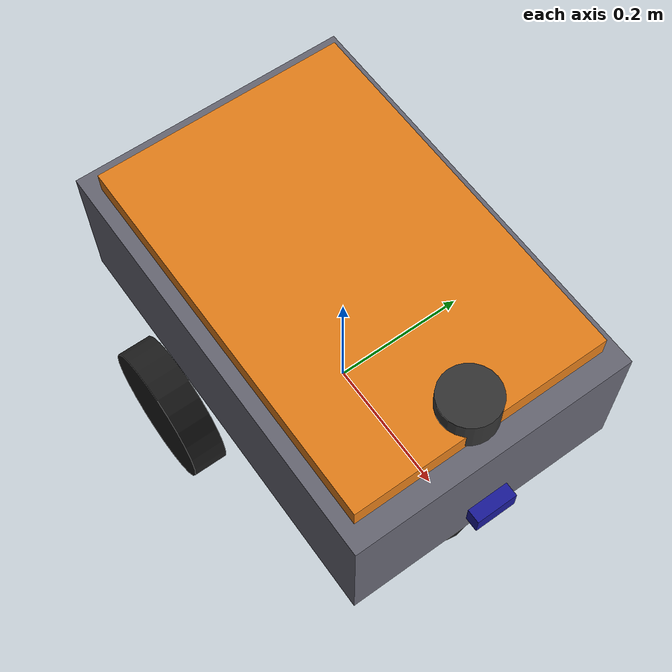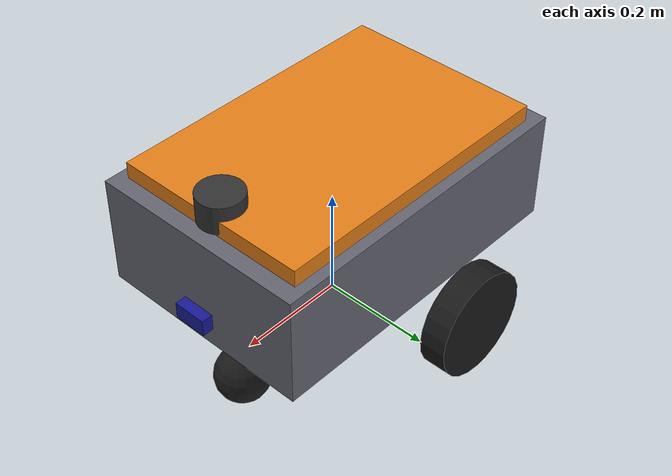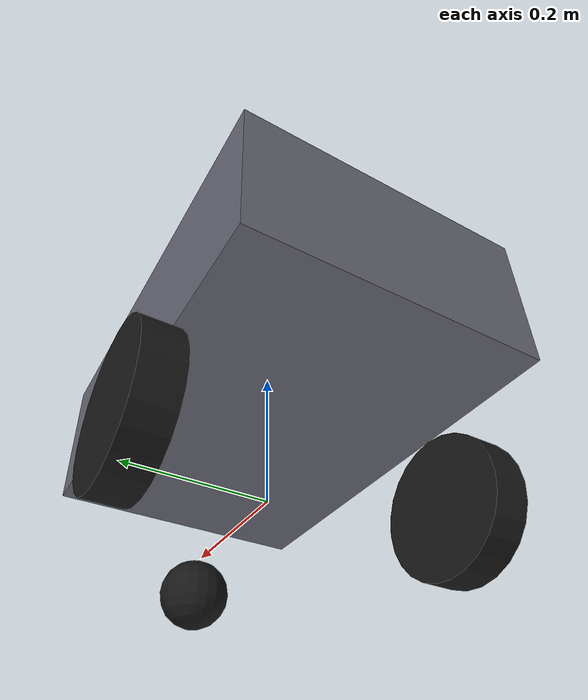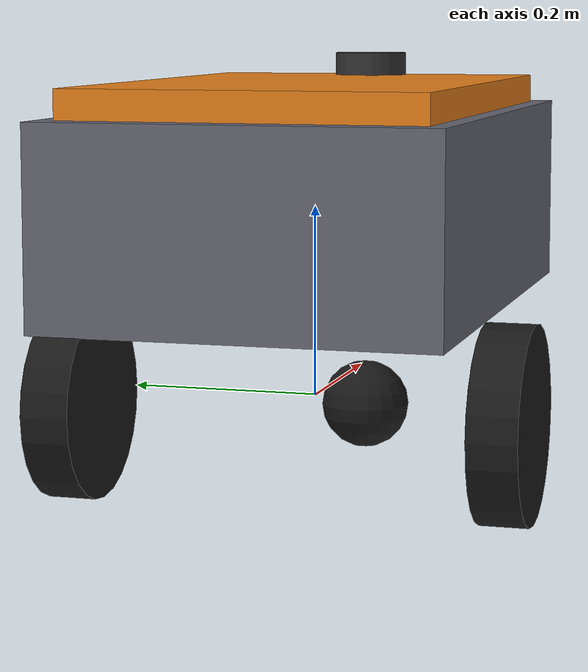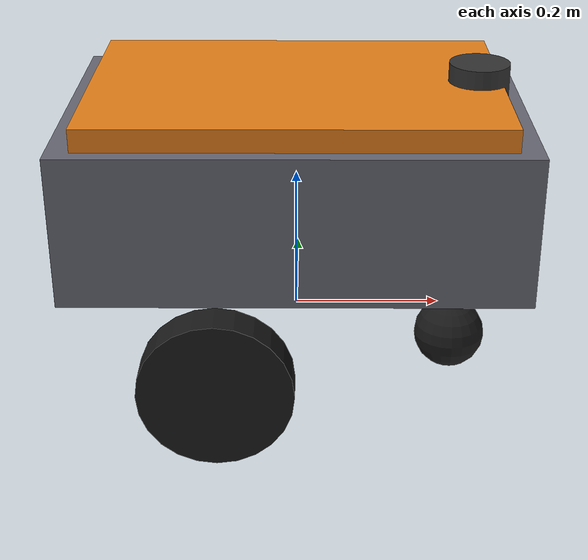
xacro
<?xml version="1.0"?>
<robot xmlns:xacro="http://www.ros.org/wiki/xacro" name="trolleybot">

  <!-- Switch between Gazebo sim hardware and the real DIY base hardware interface -->
  <xacro:arg name="use_sim" default="true"/>

  <xacro:include filename="$(find trolleybot_description)/urdf/base.xacro"/>
  <xacro:include filename="$(find trolleybot_description)/urdf/sensors.xacro"/>
  <xacro:include filename="$(find trolleybot_description)/urdf/lift.xacro"/>
  <xacro:include filename="$(find trolleybot_description)/urdf/ros2_control.xacro"/>

  <xacro:trolleybot_base/>
  <xacro:trolleybot_sensors/>
  <xacro:trolleybot_lift/>
  <xacro:trolleybot_ros2_control use_sim="$(arg use_sim)"/>

</robot>

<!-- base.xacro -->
<robot xmlns:xacro="http://www.ros.org/wiki/xacro">

  <xacro:include filename="$(find trolleybot_description)/urdf/inertials.xacro"/>

  <!-- ===== Geometry parameters ===== -->
  <xacro:property name="chassis_length" value="0.60"/>
  <xacro:property name="chassis_width"  value="0.40"/>
  <xacro:property name="chassis_height" value="0.20"/>
  <xacro:property name="chassis_mass"   value="20.0"/>

  <xacro:property name="wheel_radius"     value="0.10"/>
  <xacro:property name="wheel_width"      value="0.05"/>
  <xacro:property name="wheel_mass"       value="1.0"/>
  <xacro:property name="wheel_separation" value="0.45"/>
  <xacro:property name="wheel_xoff"       value="-0.10"/>

  <xacro:property name="caster_radius" value="0.05"/>
  <xacro:property name="caster_xoff"   value="0.22"/>

  <xacro:macro name="trolleybot_base">

    <!-- base_link is the robot origin on the ground plane between the drive wheels -->
    <link name="base_link"/>

    <!-- Chassis -->
    <joint name="chassis_joint" type="fixed">
      <parent link="base_link"/>
      <child link="chassis_link"/>
      <origin xyz="0 0 ${wheel_radius}"/>
    </joint>

    <link name="chassis_link">
      <visual>
        <origin xyz="0 0 ${chassis_height/2}"/>
        <geometry><box size="${chassis_length} ${chassis_width} ${chassis_height}"/></geometry>
        <material name="grey"><color rgba="0.4 0.4 0.45 1.0"/></material>
      </visual>
      <collision>
        <origin xyz="0 0 ${chassis_height/2}"/>
        <geometry><box size="${chassis_length} ${chassis_width} ${chassis_height}"/></geometry>
      </collision>
      <xacro:inertial_box mass="${chassis_mass}" x="${chassis_length}" y="${chassis_width}" z="${chassis_height}">
        <origin xyz="0 0 ${chassis_height/2}"/>
      </xacro:inertial_box>
    </link>

    <!-- Drive wheels -->
    <xacro:macro name="drive_wheel" params="prefix y_reflect">
      <joint name="${prefix}_wheel_joint" type="continuous">
        <parent link="base_link"/>
        <child link="${prefix}_wheel_link"/>
        <origin xyz="${wheel_xoff} ${y_reflect*wheel_separation/2} 0" rpy="${-pi/2} 0 0"/>
        <axis xyz="0 0 1"/>
      </joint>
      <link name="${prefix}_wheel_link">
        <visual>
          <geometry><cylinder radius="${wheel_radius}" length="${wheel_width}"/></geometry>
          <material name="black"><color rgba="0.1 0.1 0.1 1.0"/></material>
        </visual>
        <collision>
          <geometry><cylinder radius="${wheel_radius}" length="${wheel_width}"/></geometry>
        </collision>
        <xacro:inertial_cylinder mass="${wheel_mass}" radius="${wheel_radius}" length="${wheel_width}">
          <origin xyz="0 0 0"/>
        </xacro:inertial_cylinder>
      </link>
    </xacro:macro>

    <xacro:drive_wheel prefix="left"  y_reflect="1"/>
    <xacro:drive_wheel prefix="right" y_reflect="-1"/>

    <!-- Front caster (passive sphere) -->
    <joint name="caster_joint" type="fixed">
      <parent link="base_link"/>
      <child link="caster_link"/>
      <origin xyz="${caster_xoff} 0 ${caster_radius - wheel_radius}"/>
    </joint>
    <link name="caster_link">
      <visual>
        <geometry><sphere radius="${caster_radius}"/></geometry>
        <material name="black"><color rgba="0.1 0.1 0.1 1.0"/></material>
      </visual>
      <collision>
        <geometry><sphere radius="${caster_radius}"/></geometry>
      </collision>
      <xacro:inertial_sphere mass="0.5" radius="${caster_radius}">
        <origin xyz="0 0 0"/>
      </xacro:inertial_sphere>
    </link>

    <!-- Low-friction caster so it slides freely (Gazebo) -->
    <gazebo reference="caster_link">
      <mu1 value="0.05"/>
      <mu2 value="0.05"/>
    </gazebo>

  </xacro:macro>

</robot>

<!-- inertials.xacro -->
<robot xmlns:xacro="http://www.ros.org/wiki/xacro">

  <!-- Reusable inertia macros (origin at the geometric centre). -->
  <xacro:macro name="inertial_box" params="mass x y z *origin">
    <inertial>
      <xacro:insert_block name="origin"/>
      <mass value="${mass}"/>
      <inertia
        ixx="${(1.0/12.0)*mass*(y*y+z*z)}" ixy="0.0" ixz="0.0"
        iyy="${(1.0/12.0)*mass*(x*x+z*z)}" iyz="0.0"
        izz="${(1.0/12.0)*mass*(x*x+y*y)}"/>
    </inertial>
  </xacro:macro>

  <xacro:macro name="inertial_cylinder" params="mass radius length *origin">
    <inertial>
      <xacro:insert_block name="origin"/>
      <mass value="${mass}"/>
      <inertia
        ixx="${(1.0/12.0)*mass*(3*radius*radius+length*length)}" ixy="0.0" ixz="0.0"
        iyy="${(1.0/12.0)*mass*(3*radius*radius+length*length)}" iyz="0.0"
        izz="${0.5*mass*radius*radius}"/>
    </inertial>
  </xacro:macro>

  <xacro:macro name="inertial_sphere" params="mass radius *origin">
    <inertial>
      <xacro:insert_block name="origin"/>
      <mass value="${mass}"/>
      <inertia
        ixx="${0.4*mass*radius*radius}" ixy="0.0" ixz="0.0"
        iyy="${0.4*mass*radius*radius}" iyz="0.0"
        izz="${0.4*mass*radius*radius}"/>
    </inertial>
  </xacro:macro>

</robot>

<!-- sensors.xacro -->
<robot xmlns:xacro="http://www.ros.org/wiki/xacro">

  <xacro:macro name="trolleybot_sensors">

    <!-- ===== 2D LIDAR (navigation + SLAM) ===== -->
    <joint name="lidar_joint" type="fixed">
      <parent link="chassis_link"/>
      <child link="lidar_link"/>
      <!-- top-front of the chassis -->
      <origin xyz="${chassis_length/2 - 0.06} 0 ${chassis_height + 0.03}"/>
    </joint>
    <link name="lidar_link">
      <visual>
        <geometry><cylinder radius="0.04" length="0.05"/></geometry>
        <material name="dark"><color rgba="0.2 0.2 0.2 1.0"/></material>
      </visual>
      <collision>
        <geometry><cylinder radius="0.04" length="0.05"/></geometry>
      </collision>
      <xacro:inertial_cylinder mass="0.15" radius="0.04" length="0.05">
        <origin xyz="0 0 0"/>
      </xacro:inertial_cylinder>
    </link>

    <gazebo reference="lidar_link">
      <sensor name="lidar" type="gpu_lidar">
        <update_rate>10</update_rate>
        <topic>scan</topic>
        <gz_frame_id>lidar_link</gz_frame_id>
        <lidar>
          <scan>
            <horizontal>
              <samples>720</samples>
              <resolution>1</resolution>
              <min_angle>-3.14159</min_angle>
              <max_angle>3.14159</max_angle>
            </horizontal>
          </scan>
          <range>
            <min>0.12</min>
            <max>12.0</max>
            <resolution>0.01</resolution>
          </range>
        </lidar>
        <always_on>1</always_on>
        <visualize>true</visualize>
      </sensor>
    </gazebo>

    <!-- ===== Front camera (fiducial docking) ===== -->
    <joint name="camera_joint" type="fixed">
      <parent link="chassis_link"/>
      <child link="camera_link"/>
      <!-- front face, low, looking forward toward trolley tags -->
      <origin xyz="${chassis_length/2 + 0.01} 0 0.05" rpy="0 0 0"/>
    </joint>
    <link name="camera_link">
      <visual>
        <geometry><box size="0.02 0.06 0.03"/></geometry>
        <material name="blue"><color rgba="0.1 0.1 0.6 1.0"/></material>
      </visual>
      <xacro:inertial_box mass="0.05" x="0.02" y="0.06" z="0.03">
        <origin xyz="0 0 0"/>
      </xacro:inertial_box>
    </link>

    <!-- Optical frame (REP-103: z forward, x right, y down) -->
    <joint name="camera_optical_joint" type="fixed">
      <parent link="camera_link"/>
      <child link="camera_optical_link"/>
      <origin xyz="0 0 0" rpy="${-pi/2} 0 ${-pi/2}"/>
    </joint>
    <link name="camera_optical_link"/>

    <gazebo reference="camera_link">
      <sensor name="camera" type="camera">
        <update_rate>30</update_rate>
        <topic>camera/image</topic>
        <gz_frame_id>camera_optical_link</gz_frame_id>
        <camera>
          <horizontal_fov>1.20</horizontal_fov>
          <image>
            <width>1280</width>
            <height>720</height>
            <format>R8G8B8</format>
          </image>
          <clip>
            <near>0.05</near>
            <far>15.0</far>
          </clip>
        </camera>
        <always_on>1</always_on>
        <visualize>true</visualize>
      </sensor>
    </gazebo>

  </xacro:macro>

</robot>

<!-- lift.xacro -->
<robot xmlns:xacro="http://www.ros.org/wiki/xacro">

  <xacro:macro name="trolleybot_lift">

    <joint name="lift_joint" type="prismatic">
      <parent link="chassis_link"/>
      <child link="lift_link"/>
      <origin xyz="0 0 ${chassis_height}"/>
      <axis xyz="0 0 1"/>
      <limit lower="0.0" upper="0.10" effort="500.0" velocity="0.05"/>
      <dynamics damping="10.0" friction="5.0"/>
    </joint>

    <link name="lift_link">
      <visual>
        <origin xyz="0 0 0.015"/>
        <geometry><box size="${chassis_length*0.9} ${chassis_width*0.9} 0.03"/></geometry>
        <material name="orange"><color rgba="0.9 0.5 0.1 1.0"/></material>
      </visual>
      <collision>
        <origin xyz="0 0 0.015"/>
        <geometry><box size="${chassis_length*0.9} ${chassis_width*0.9} 0.03"/></geometry>
      </collision>
      <xacro:inertial_box mass="3.0" x="${chassis_length*0.9}" y="${chassis_width*0.9}" z="0.03">
        <origin xyz="0 0 0.015"/>
      </xacro:inertial_box>
    </link>

  </xacro:macro>

</robot>
